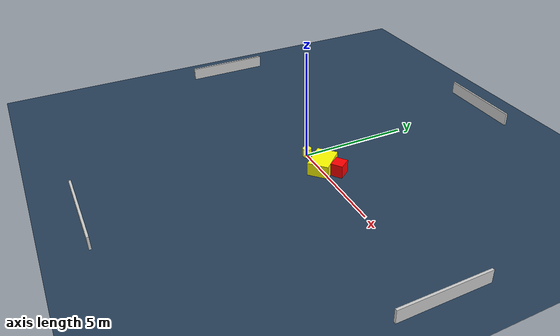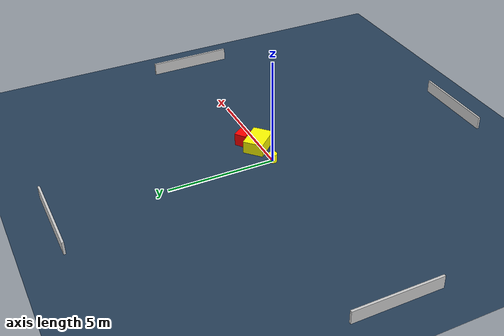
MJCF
<?xml version="1.0" ?>
<mujoco model="generated_environment">
  <option timestep="0.01" integrator="RK4" cone="elliptic"/>
  <default>
    <geom density="1"/>
  </default>
  <asset>
    <texture builtin="gradient" height="3072" name="skybox" rgb1="0.3 0.5 0.7" rgb2="0 0 0" type="skybox" width="512"/>
    <texture builtin="checker" height="300" name="groundplane" rgb1="0.2 0.3 0.4" rgb2="0.1 0.2 0.3" type="2d" width="300"/>
    <material name="groundplane" reflectance="0.2" texrepeat="5 5" texture="groundplane"/>
  </asset>
  <worldbody>
    <light dir="0 0 -1" directional="true" pos="0 0 1.5"/>
    <geom condim="3" friction="0.5 0.005 0.001" material="groundplane" name="floor" pos="0 0 0" size="0 0 0.05" type="plane"/>
    <body name="walls">
      <geom name="wall_1" condim="4" pos="-10.0 0.0 0.3" rgba="0.800000011920929 0.800000011920929 0.800000011920929 1.0" size="0.05 2.0 0.3" type="box"/>
      <geom name="wall_2" condim="4" pos="10.0 0.0 0.3" rgba="0.800000011920929 0.800000011920929 0.800000011920929 1.0" size="0.05 2.0 0.3" type="box"/>
      <geom name="wall_3" condim="4" pos="0.0 -10.0 0.3" rgba="0.800000011920929 0.800000011920929 0.800000011920929 1.0" size="2.0 0.05 0.3" type="box"/>
      <geom name="wall_4" condim="4" pos="0.0 10.0 0.3" rgba="0.800000011920929 0.800000011920929 0.800000011920929 1.0" size="2.0 0.05 0.3" type="box"/>
    </body>
    <body name="robot">
      <joint name="joint_x" type="slide" pos="0 0 0" axis="1 0 0"/>
      <joint name="joint_y" type="slide" pos="0 0 0" axis="0 1 0"/>
      <geom name="robot" type="cylinder" pos="0.0 0.0 0.2" size="0.2 0.2 0.0" mass="5.0" friction="1.0 0.005 0.0001" condim="4" rgba="1.0 1.0 0.0 1.0"/>
    </body>
    <body name="obstacle_1_movable">
      <geom name="obstacle_1_movable" condim="4" pos="1.2776424220688476 0.11624145815525899 0.3" euler="0 0 132.2349888887811" friction="0.0 0.005 0.001" rgba="1.0 1.0 0.0 1.0" size="0.6597862364615374 0.4743120463191117 0.3" type="box" mass="0.1"/>
      <joint type="free"/>
    </body>
    <body name="obstacle_2_static">
      <geom name="obstacle_2_static" condim="4" pos="1.9093581535133257 0.5881777026430836 0.3" euler="0 0 35.83863915560397" friction="0.0 0.005 0.001" rgba="1.0 0.0 0.0 1.0" size="0.2723180566569776 0.30003470671410654 0.3" type="box"/>
    </body>
  </worldbody>
  <actuator>
    <motor name="actuator_x" joint="joint_x" gear="1" ctrlrange="-1 1"/>
    <motor name="actuator_y" joint="joint_y" gear="1" ctrlrange="-1 1"/>
  </actuator>
</mujoco>
